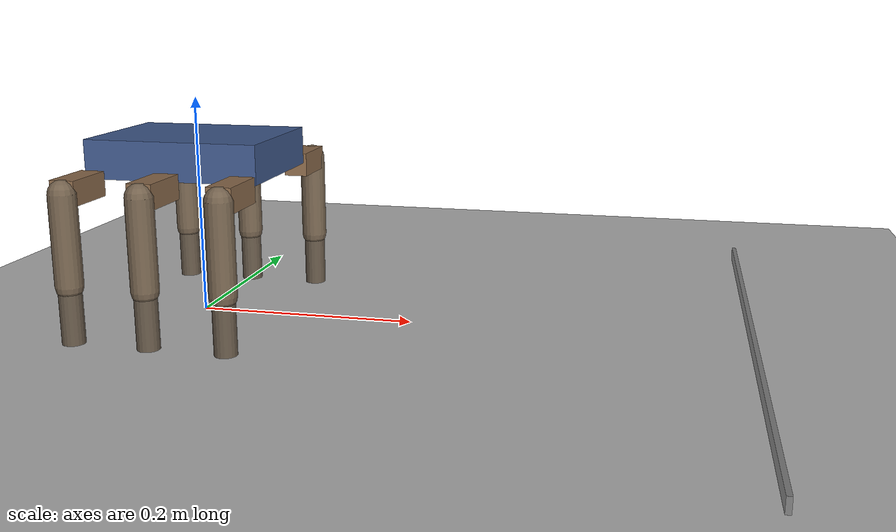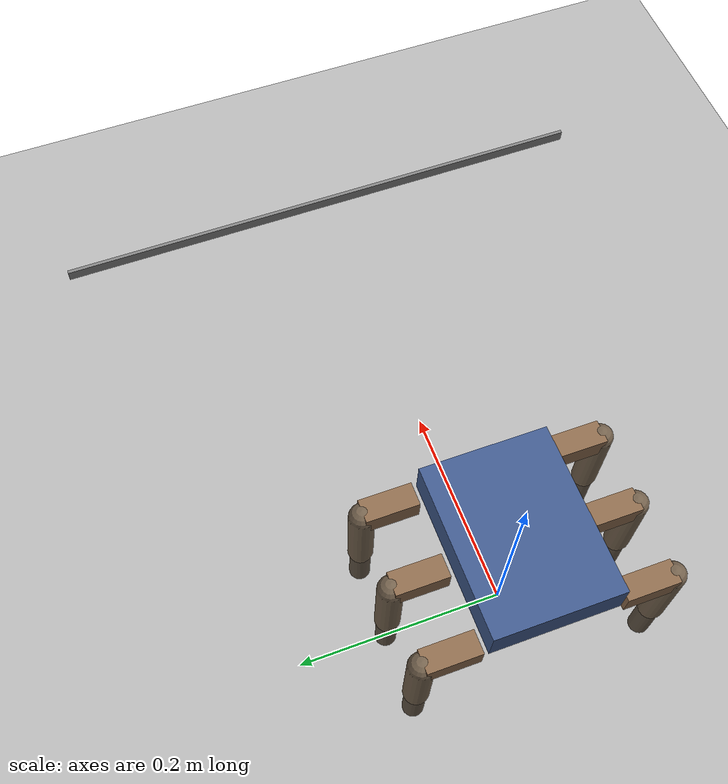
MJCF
<mujoco model="argos_roach">
  <compiler angle="radian"/>

  <option jacobian="dense"/>

  <worldbody>
    <geom name="floor" size="10 10 0.1" type="plane" friction="0.8" rgba="0.7 0.7 0.7 1"/>
    <geom name="wire" size="0.002 0.3 0.006" pos="0.5 0 0.006" type="box" friction="0.8"/>
    <body name="body" pos="0 0 0.15">
      <joint type="free"/>
      <geom name="body_geom" size="0.08 0.06 0.0175" type="box" rgba="0.25 0.35 0.55 1" mass="0.7"/>
      <body name="coxa0" pos="0.07 0.065 -0.02">
        <joint name="j_coxa0" range="-0.8 0.8" damping="0.5" frictionloss="0.02"/>
        <geom name="coxa0" size="0.011 0.025 0.011" pos="0 0.025 0" type="box" rgba="0.55 0.42 0.3 1" mass="0.035"/>
        <body name="femur0" pos="0 0.05 0">
          <joint name="j_femur0" range="-1.3 1.3" armature="0.01" damping="0.8" frictionloss="0.02" axis="1 0 0"/>
          <geom name="femur0" size="0.012 0.04" pos="0 0 -0.04" type="capsule" rgba="0.45 0.38 0.3 1" mass="0.055"/>
          <body name="tibia0" pos="0 0 -0.08">
            <joint name="j_tibia0" range="-2.6 2.6" armature="0.01" damping="0.8" frictionloss="0.02" axis="1 0 0"/>
            <geom name="tibia0" size="0.01 0.04" pos="0 0 -0.04" type="capsule" rgba="0.38 0.33 0.27 1" mass="0.045"/>
            <geom name="foot0" size="0.016" pos="0 0 -0.0752" priority="1" rgba="0.2 0.2 0.2 1" mass="0.005"/>
          </body>
        </body>
      </body>
      <body name="coxa1" pos="0.07 -0.065 -0.02">
        <joint name="j_coxa1" range="-0.8 0.8" damping="0.5" frictionloss="0.02"/>
        <geom name="coxa1" size="0.011 0.025 0.011" pos="0 -0.025 0" type="box" rgba="0.55 0.42 0.3 1" mass="0.035"/>
        <body name="femur1" pos="0 -0.05 0">
          <joint name="j_femur1" range="-1.3 1.3" armature="0.01" damping="0.8" frictionloss="0.02" axis="1 0 0"/>
          <geom name="femur1" size="0.012 0.04" pos="0 0 -0.04" type="capsule" rgba="0.45 0.38 0.3 1" mass="0.055"/>
          <body name="tibia1" pos="0 0 -0.08">
            <joint name="j_tibia1" range="-2.6 2.6" armature="0.01" damping="0.8" frictionloss="0.02" axis="1 0 0"/>
            <geom name="tibia1" size="0.01 0.04" pos="0 0 -0.04" type="capsule" rgba="0.38 0.33 0.27 1" mass="0.045"/>
            <geom name="foot1" size="0.016" pos="0 0 -0.0752" priority="1" rgba="0.2 0.2 0.2 1" mass="0.005"/>
          </body>
        </body>
      </body>
      <body name="coxa2" pos="0 -0.065 -0.02">
        <joint name="j_coxa2" range="-0.8 0.8" damping="0.5" frictionloss="0.02"/>
        <geom name="coxa2" size="0.011 0.025 0.011" pos="0 -0.025 0" type="box" rgba="0.55 0.42 0.3 1" mass="0.035"/>
        <body name="femur2" pos="0 -0.05 0">
          <joint name="j_femur2" range="-1.3 1.3" armature="0.01" damping="0.8" frictionloss="0.02" axis="1 0 0"/>
          <geom name="femur2" size="0.012 0.04" pos="0 0 -0.04" type="capsule" rgba="0.45 0.38 0.3 1" mass="0.055"/>
          <body name="tibia2" pos="0 0 -0.08">
            <joint name="j_tibia2" range="-2.6 2.6" armature="0.01" damping="0.8" frictionloss="0.02" axis="1 0 0"/>
            <geom name="tibia2" size="0.01 0.04" pos="0 0 -0.04" type="capsule" rgba="0.38 0.33 0.27 1" mass="0.045"/>
            <geom name="foot2" size="0.016" pos="0 0 -0.0752" priority="1" rgba="0.2 0.2 0.2 1" mass="0.005"/>
          </body>
        </body>
      </body>
      <body name="coxa3" pos="0 0.065 -0.02">
        <joint name="j_coxa3" range="-0.8 0.8" damping="0.5" frictionloss="0.02"/>
        <geom name="coxa3" size="0.011 0.025 0.011" pos="0 0.025 0" type="box" rgba="0.55 0.42 0.3 1" mass="0.035"/>
        <body name="femur3" pos="0 0.05 0">
          <joint name="j_femur3" range="-1.3 1.3" armature="0.01" damping="0.8" frictionloss="0.02" axis="1 0 0"/>
          <geom name="femur3" size="0.012 0.04" pos="0 0 -0.04" type="capsule" rgba="0.45 0.38 0.3 1" mass="0.055"/>
          <body name="tibia3" pos="0 0 -0.08">
            <joint name="j_tibia3" range="-2.6 2.6" armature="0.01" damping="0.8" frictionloss="0.02" axis="1 0 0"/>
            <geom name="tibia3" size="0.01 0.04" pos="0 0 -0.04" type="capsule" rgba="0.38 0.33 0.27 1" mass="0.045"/>
            <geom name="foot3" size="0.016" pos="0 0 -0.0752" priority="1" rgba="0.2 0.2 0.2 1" mass="0.005"/>
          </body>
        </body>
      </body>
      <body name="coxa4" pos="-0.07 0.065 -0.02">
        <joint name="j_coxa4" range="-0.8 0.8" damping="0.5" frictionloss="0.02"/>
        <geom name="coxa4" size="0.011 0.025 0.011" pos="0 0.025 0" type="box" rgba="0.55 0.42 0.3 1" mass="0.035"/>
        <body name="femur4" pos="0 0.05 0">
          <joint name="j_femur4" range="-1.3 1.3" armature="0.01" damping="0.8" frictionloss="0.02" axis="1 0 0"/>
          <geom name="femur4" size="0.012 0.04" pos="0 0 -0.04" type="capsule" rgba="0.45 0.38 0.3 1" mass="0.055"/>
          <body name="tibia4" pos="0 0 -0.08">
            <joint name="j_tibia4" range="-2.6 2.6" armature="0.01" damping="0.8" frictionloss="0.02" axis="1 0 0"/>
            <geom name="tibia4" size="0.01 0.04" pos="0 0 -0.04" type="capsule" rgba="0.38 0.33 0.27 1" mass="0.045"/>
            <geom name="foot4" size="0.016" pos="0 0 -0.0752" priority="1" rgba="0.2 0.2 0.2 1" mass="0.005"/>
          </body>
        </body>
      </body>
      <body name="coxa5" pos="-0.07 -0.065 -0.02">
        <joint name="j_coxa5" range="-0.8 0.8" damping="0.5" frictionloss="0.02"/>
        <geom name="coxa5" size="0.011 0.025 0.011" pos="0 -0.025 0" type="box" rgba="0.55 0.42 0.3 1" mass="0.035"/>
        <body name="femur5" pos="0 -0.05 0">
          <joint name="j_femur5" range="-1.3 1.3" armature="0.01" damping="0.8" frictionloss="0.02" axis="1 0 0"/>
          <geom name="femur5" size="0.012 0.04" pos="0 0 -0.04" type="capsule" rgba="0.45 0.38 0.3 1" mass="0.055"/>
          <body name="tibia5" pos="0 0 -0.08">
            <joint name="j_tibia5" range="-2.6 2.6" armature="0.01" damping="0.8" frictionloss="0.02" axis="1 0 0"/>
            <geom name="tibia5" size="0.01 0.04" pos="0 0 -0.04" type="capsule" rgba="0.38 0.33 0.27 1" mass="0.045"/>
            <geom name="foot5" size="0.016" pos="0 0 -0.0752" priority="1" rgba="0.2 0.2 0.2 1" mass="0.005"/>
          </body>
        </body>
      </body>
    </body>
  </worldbody>

  <contact>
    <exclude body1="coxa0" body2="tibia0"/>
    <exclude body1="coxa1" body2="tibia1"/>
    <exclude body1="coxa2" body2="tibia2"/>
    <exclude body1="coxa3" body2="tibia3"/>
    <exclude body1="coxa4" body2="tibia4"/>
    <exclude body1="coxa5" body2="tibia5"/>
  </contact>

  <actuator>
    <general name="a_coxa0" joint="j_coxa0" ctrlrange="-1.5 1.5" forcerange="-2.5 2.5" biastype="affine" gainprm="60" biasprm="0 -60"/>
    <general name="a_femur0" joint="j_femur0" ctrlrange="-1.5 1.5" forcerange="-2.5 2.5" biastype="affine" gainprm="60" biasprm="0 -60"/>
    <general name="a_tibia0" joint="j_tibia0" ctrlrange="-1.5 1.5" forcerange="-2.5 2.5" biastype="affine" gainprm="60" biasprm="0 -60"/>
    <general name="a_coxa1" joint="j_coxa1" ctrlrange="-1.5 1.5" forcerange="-2.5 2.5" biastype="affine" gainprm="60" biasprm="0 -60"/>
    <general name="a_femur1" joint="j_femur1" ctrlrange="-1.5 1.5" forcerange="-2.5 2.5" biastype="affine" gainprm="60" biasprm="0 -60"/>
    <general name="a_tibia1" joint="j_tibia1" ctrlrange="-1.5 1.5" forcerange="-2.5 2.5" biastype="affine" gainprm="60" biasprm="0 -60"/>
    <general name="a_coxa2" joint="j_coxa2" ctrlrange="-1.5 1.5" forcerange="-2.5 2.5" biastype="affine" gainprm="60" biasprm="0 -60"/>
    <general name="a_femur2" joint="j_femur2" ctrlrange="-1.5 1.5" forcerange="-2.5 2.5" biastype="affine" gainprm="60" biasprm="0 -60"/>
    <general name="a_tibia2" joint="j_tibia2" ctrlrange="-1.5 1.5" forcerange="-2.5 2.5" biastype="affine" gainprm="60" biasprm="0 -60"/>
    <general name="a_coxa3" joint="j_coxa3" ctrlrange="-1.5 1.5" forcerange="-2.5 2.5" biastype="affine" gainprm="60" biasprm="0 -60"/>
    <general name="a_femur3" joint="j_femur3" ctrlrange="-1.5 1.5" forcerange="-2.5 2.5" biastype="affine" gainprm="60" biasprm="0 -60"/>
    <general name="a_tibia3" joint="j_tibia3" ctrlrange="-1.5 1.5" forcerange="-2.5 2.5" biastype="affine" gainprm="60" biasprm="0 -60"/>
    <general name="a_coxa4" joint="j_coxa4" ctrlrange="-1.5 1.5" forcerange="-2.5 2.5" biastype="affine" gainprm="60" biasprm="0 -60"/>
    <general name="a_femur4" joint="j_femur4" ctrlrange="-1.5 1.5" forcerange="-2.5 2.5" biastype="affine" gainprm="60" biasprm="0 -60"/>
    <general name="a_tibia4" joint="j_tibia4" ctrlrange="-1.5 1.5" forcerange="-2.5 2.5" biastype="affine" gainprm="60" biasprm="0 -60"/>
    <general name="a_coxa5" joint="j_coxa5" ctrlrange="-1.5 1.5" forcerange="-2.5 2.5" biastype="affine" gainprm="60" biasprm="0 -60"/>
    <general name="a_femur5" joint="j_femur5" ctrlrange="-1.5 1.5" forcerange="-2.5 2.5" biastype="affine" gainprm="60" biasprm="0 -60"/>
    <general name="a_tibia5" joint="j_tibia5" ctrlrange="-1.5 1.5" forcerange="-2.5 2.5" biastype="affine" gainprm="60" biasprm="0 -60"/>
  </actuator>
</mujoco>
